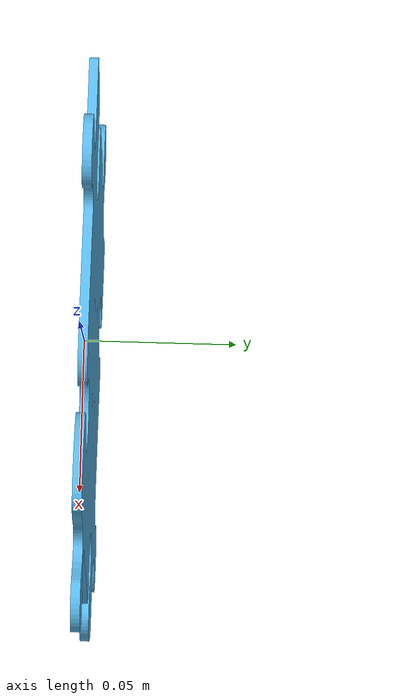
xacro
<?xml version="1.0"?>
<robot  xmlns:xacro="http://ros.org/wiki/xacro" name="part">

  <!-- This contains the macro "ses_part_macro" that places the clip wrt the tool tip -->
  <include filename="$(find lesson_tf_terminal)/models/part.macro.xacro" />

  <!-- Run the macro with the part name and offsets -->
  <xacro:ses_part_macro model_name="puzzle_flat.dae"
                        model_x="0.0110"
                        model_y="0.0030"
                        model_z="-0.0379"
                        model_rr="0.0"
                        model_rp="-0.2618"
                        model_ry="0" />
</robot>

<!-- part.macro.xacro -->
<robot xmlns:xacro="http://ros.org/wiki/xacro">

<!--This macro is designed to be run by a part xacro in the ses_parts/ package -->
<xacro:macro name="ses_part_macro" params="model_name model_x model_y model_z model_rr model_rp model_ry" >

  <!-- tool1 is the point at which parts connect to the tool -->
  <!-- it is also referneced in tool.macro.xacro -->
  <link name="tool1" />

  <joint name="tool1-part" type="fixed" >
    <parent link="tool1" />
    <child link="part" />
    <origin xyz="${model_x} ${model_y} ${model_z}" rpy="${model_rr} ${model_rp} ${model_ry}" />
  </joint>

  <link name="part" >
    <visual>
      <geometry>
        <mesh filename="package://lesson_tf_cpp/models/${model_name}" />
      </geometry>
    </visual>
    <collision>
      <geometry>
        <mesh filename="package://lesson_tf_cpp/models/${model_name}" />
      </geometry>
    </collision>
  </link>

</xacro:macro>
</robot>
